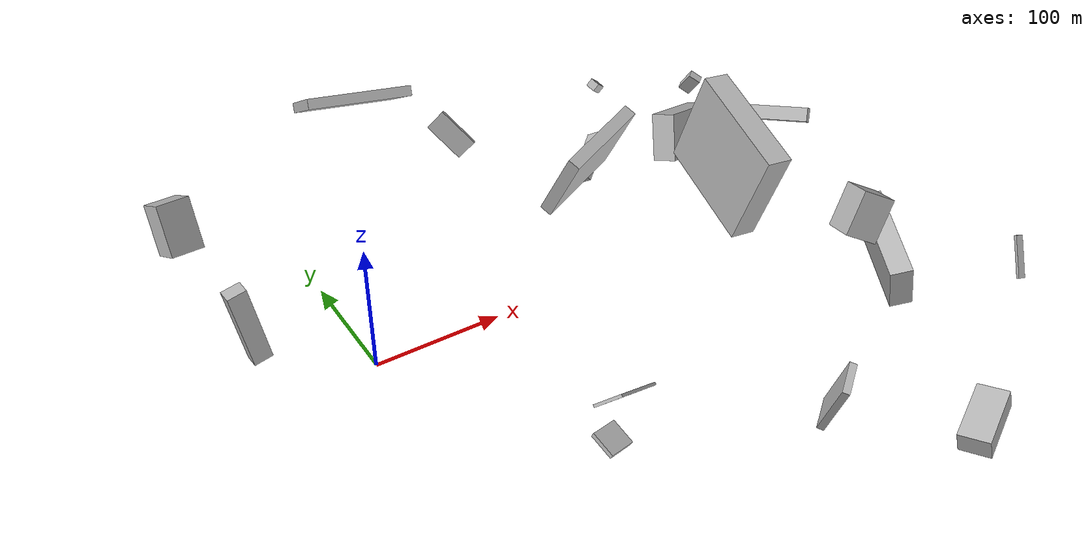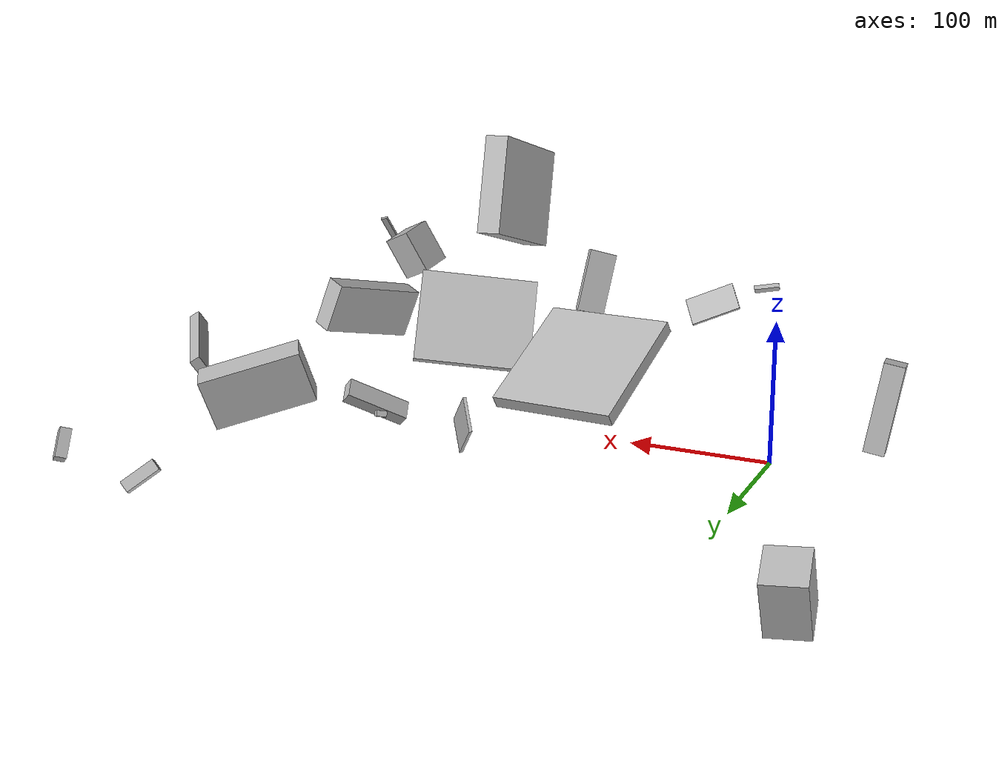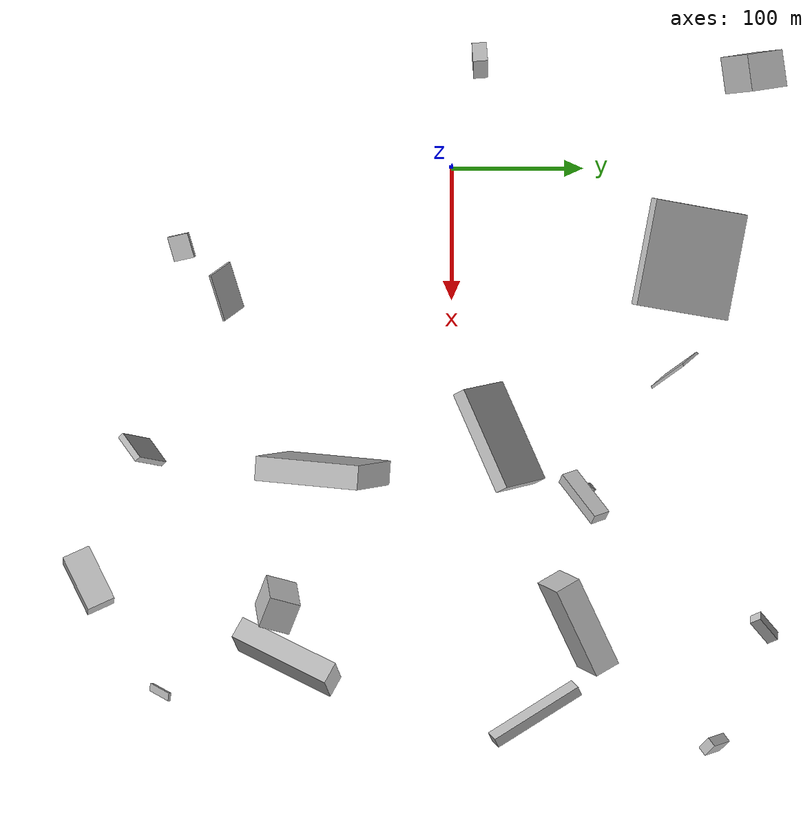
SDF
<sdf version="1.6">
 <world name="default">
  <scene>
   <sky><clouds><speed>12</speed></clouds></sky>
   <ambient>0.4 0.4 0.4 1</ambient>
   <background>0.7 0.7 0.7 1</background>
   <shadows>1</shadows>
  </scene>
  <gravity>0 0 -9.8066</gravity>
  <magnetic_field>6e-06 2.3e-05 -4.2e-05</magnetic_field>
  <physics default="0" name="default_physics" type="ode">
   <ode>
    <solver>
     <type>quick</type>
     <iters>10</iters>
     <sor>1.0</sor>
     <use_dynamic_moi_rescaling>0</use_dynamic_moi_rescaling>
    </solver>
    <constraints>
     <cfm>0</cfm>
     <erp>0.2</erp>
     <contact_max_correcting_vel>100</contact_max_correcting_vel>
     <contact_surface_layer>0.001</contact_surface_layer>
    </constraints>
   </ode>
   <max_step_size>0.004</max_step_size>
   <real_time_factor>1</real_time_factor>
   <real_time_update_rate>250</real_time_update_rate>
  </physics>
  <light name="sun" type="directional">
   <pose>0 0 10 0 0 0</pose>
   <diffuse>0.8 0.8 0.8 1</diffuse>
   <specular>0.2 0.2 0.2 1</specular>
   <attenuation>
    <range>1000</range>
    <constant>0.9</constant>
    <linear>0.01</linear>
    <quadratic>0.001</quadratic>
   </attenuation>
   <direction>-0.5 0.1 -0.9</direction>
  </light>
  <model name="building_1">
   <static>0</static>
   <pose>205.51193458305443 31.113736211321893 83.4086394063709 0.23318753947075804 -1.071206961449247 -1.3637464173691178</pose>
   <link name="link">
    <gravity>0</gravity>
    <pose>0 0 5.0 0 0 0</pose>
    <collision name="collision"><geometry><box><size>63 80 10</size></box></geometry></collision>
    <visual name="visual">
     <cast_shadows>0</cast_shadows>
     <geometry><box><size>63 80 10</size></box></geometry>
     <material>
      <script>
       <uri>model://HANNAS_wall/materials/scripts</uri>
       <uri>model://HANNAS_wall/materials/textures</uri>
       <name>vrc/HANNAS_wall</name>
      </script>
     </material>
    </visual>
   </link>
  </model>
  <model name="building_2">
   <static>0</static>
   <pose>-72.8097138840385 238.230057463352 32.45750631742803 2.7114410699752036 0.05901171862183994 0.13861246529188806</pose>
   <link name="link">
    <gravity>0</gravity>
    <pose>0 0 22.0 0 0 0</pose>
    <collision name="collision"><geometry><box><size>28 30 44</size></box></geometry></collision>
    <visual name="visual">
     <cast_shadows>0</cast_shadows>
     <geometry><box><size>28 30 44</size></box></geometry>
     <material>
      <script>
       <uri>model://HANNAS_wall/materials/scripts</uri>
       <uri>model://HANNAS_wall/materials/textures</uri>
       <name>vrc/HANNAS_wall</name>
      </script>
     </material>
    </visual>
   </link>
  </model>
  <model name="building_3">
   <static>0</static>
   <pose>433.4050591552855 201.84383246542865 17.532305766085667 2.6458547542746094 0.9393686576414674 1.8023909057959004</pose>
   <link name="link">
    <gravity>0</gravity>
    <pose>0 0 6.0 0 0 0</pose>
    <collision name="collision"><geometry><box><size>21 8 12</size></box></geometry></collision>
    <visual name="visual">
     <cast_shadows>0</cast_shadows>
     <geometry><box><size>21 8 12</size></box></geometry>
     <material>
      <script>
       <uri>model://HANNAS_wall/materials/scripts</uri>
       <uri>model://HANNAS_wall/materials/textures</uri>
       <name>vrc/HANNAS_wall</name>
      </script>
     </material>
    </visual>
   </link>
  </model>
  <model name="building_4">
   <static>0</static>
   <pose>325.7994523551418 -141.96031522768322 89.69832774721696 -1.8505331816770243 0.435329415939954 -0.3824167313314099</pose>
   <link name="link">
    <gravity>0</gravity>
    <pose>0 0 12.0 0 0 0</pose>
    <collision name="collision"><geometry><box><size>26 34 24</size></box></geometry></collision>
    <visual name="visual">
     <cast_shadows>0</cast_shadows>
     <geometry><box><size>26 34 24</size></box></geometry>
     <material>
      <script>
       <uri>model://HANNAS_wall/materials/scripts</uri>
       <uri>model://HANNAS_wall/materials/textures</uri>
       <name>vrc/HANNAS_wall</name>
      </script>
     </material>
    </visual>
   </link>
  </model>
  <model name="building_5">
   <static>0</static>
   <pose>94.18550731791068 -170.24770264945934 57.7046297931991 -0.524443430632834 -0.6937857793756104 -0.923627287219185</pose>
   <link name="link">
    <gravity>0</gravity>
    <pose>0 0 1.0 0 0 0</pose>
    <collision name="collision"><geometry><box><size>23 38 2</size></box></geometry></collision>
    <visual name="visual">
     <cast_shadows>0</cast_shadows>
     <geometry><box><size>23 38 2</size></box></geometry>
     <material>
      <script>
       <uri>model://HANNAS_wall/materials/scripts</uri>
       <uri>model://HANNAS_wall/materials/textures</uri>
       <name>vrc/HANNAS_wall</name>
      </script>
     </material>
    </visual>
   </link>
  </model>
  <model name="building_6">
   <static>0</static>
   <pose>363.79062851934555 -127.04862962128205 54.38419497286796 -2.90408458477141 0.23281244339004206 -2.023379155908653</pose>
   <link name="link">
    <gravity>0</gravity>
    <pose>0 0 19.5 0 0 0</pose>
    <collision name="collision"><geometry><box><size>80 17 39</size></box></geometry></collision>
    <visual name="visual">
     <cast_shadows>0</cast_shadows>
     <geometry><box><size>80 17 39</size></box></geometry>
     <material>
      <script>
       <uri>model://HANNAS_wall/materials/scripts</uri>
       <uri>model://HANNAS_wall/materials/textures</uri>
       <name>vrc/HANNAS_wall</name>
      </script>
     </material>
    </visual>
   </link>
  </model>
  <model name="building_7">
   <static>0</static>
   <pose>32.35403812856214 183.94131538919788 114.07204727315721 1.626449559401182 0.5084518662623116 1.4107042294615713</pose>
   <link name="link">
    <gravity>0</gravity>
    <pose>0 0 40.0 0 0 0</pose>
    <collision name="collision"><geometry><box><size>80 8 80</size></box></geometry></collision>
    <visual name="visual">
     <cast_shadows>0</cast_shadows>
     <geometry><box><size>80 8 80</size></box></geometry>
     <material>
      <script>
       <uri>model://HANNAS_wall/materials/scripts</uri>
       <uri>model://HANNAS_wall/materials/textures</uri>
       <name>vrc/HANNAS_wall</name>
      </script>
     </material>
    </visual>
   </link>
  </model>
  <model name="building_8">
   <static>0</static>
   <pose>356.6942544382416 243.11112647867046 11.720405225770667 -0.936192504273742 -0.4458213455629827 1.9806279672327032</pose>
   <link name="link">
    <gravity>0</gravity>
    <pose>0 0 12.5 0 0 0</pose>
    <collision name="collision"><geometry><box><size>9 8 25</size></box></geometry></collision>
    <visual name="visual">
     <cast_shadows>0</cast_shadows>
     <geometry><box><size>9 8 25</size></box></geometry>
     <material>
      <script>
       <uri>model://HANNAS_wall/materials/scripts</uri>
       <uri>model://HANNAS_wall/materials/textures</uri>
       <name>vrc/HANNAS_wall</name>
      </script>
     </material>
    </visual>
   </link>
  </model>
  <model name="building_9">
   <static>0</static>
   <pose>250.8679752727282 93.72366504839353 44.19573165261659 2.4565621941405054 -0.7838432469351333 2.7459872907079017</pose>
   <link name="link">
    <gravity>0</gravity>
    <pose>0 0 7.0 0 0 0</pose>
    <collision name="collision"><geometry><box><size>9 44 14</size></box></geometry></collision>
    <visual name="visual">
     <cast_shadows>0</cast_shadows>
     <geometry><box><size>9 44 14</size></box></geometry>
     <material>
      <script>
       <uri>model://HANNAS_wall/materials/scripts</uri>
       <uri>model://HANNAS_wall/materials/textures</uri>
       <name>vrc/HANNAS_wall</name>
      </script>
     </material>
    </visual>
   </link>
  </model>
  <model name="building_10">
   <static>0</static>
   <pose>243.47452759023088 102.89184127457678 35.894478215447855 -2.80840062926938 -0.20326983052016145 0.6951115026963126</pose>
   <link name="link">
    <gravity>0</gravity>
    <pose>0 0 2.0 0 0 0</pose>
    <collision name="collision"><geometry><box><size>7 6 4</size></box></geometry></collision>
    <visual name="visual">
     <cast_shadows>0</cast_shadows>
     <geometry><box><size>7 6 4</size></box></geometry>
     <material>
      <script>
       <uri>model://HANNAS_wall/materials/scripts</uri>
       <uri>model://HANNAS_wall/materials/textures</uri>
       <name>vrc/HANNAS_wall</name>
      </script>
     </material>
    </visual>
   </link>
  </model>
  <model name="building_11">
   <static>0</static>
   <pose>397.61631239708373 -211.56489731035975 89.2919191894936 2.603360170438703 0.1859582662268719 -0.1220400679179445</pose>
   <link name="link">
    <gravity>0</gravity>
    <pose>0 0 15.0 0 0 0</pose>
    <collision name="collision"><geometry><box><size>6 2 30</size></box></geometry></collision>
    <visual name="visual">
     <cast_shadows>0</cast_shadows>
     <geometry><box><size>6 2 30</size></box></geometry>
     <material>
      <script>
       <uri>model://HANNAS_wall/materials/scripts</uri>
       <uri>model://HANNAS_wall/materials/textures</uri>
       <name>vrc/HANNAS_wall</name>
      </script>
     </material>
    </visual>
   </link>
  </model>
  <model name="building_12">
   <static>0</static>
   <pose>409.1707624756478 60.582139685186135 54.312487265416074 -2.140434174562262 -0.171940903052503 -1.017673113821138</pose>
   <link name="link">
    <gravity>0</gravity>
    <pose>0 0 4.0 0 0 0</pose>
    <collision name="collision"><geometry><box><size>75 12 8</size></box></geometry></collision>
    <visual name="visual">
     <cast_shadows>0</cast_shadows>
     <geometry><box><size>75 12 8</size></box></geometry>
     <material>
      <script>
       <uri>model://HANNAS_wall/materials/scripts</uri>
       <uri>model://HANNAS_wall/materials/textures</uri>
       <name>vrc/HANNAS_wall</name>
      </script>
     </material>
    </visual>
   </link>
  </model>
  <model name="building_13">
   <static>0</static>
   <pose>218.9688846794324 -95.38173801487552 150.1039576790783 1.6423415777892336 -0.3217491709626683 1.4785781678894854</pose>
   <link name="link">
    <gravity>0</gravity>
    <pose>0 0 9.0 0 0 0</pose>
    <collision name="collision"><geometry><box><size>80 72 18</size></box></geometry></collision>
    <visual name="visual">
     <cast_shadows>0</cast_shadows>
     <geometry><box><size>80 72 18</size></box></geometry>
     <material>
      <script>
       <uri>model://HANNAS_wall/materials/scripts</uri>
       <uri>model://HANNAS_wall/materials/textures</uri>
       <name>vrc/HANNAS_wall</name>
      </script>
     </material>
    </visual>
   </link>
  </model>
  <model name="building_14">
   <static>0</static>
   <pose>349.25158898050523 86.38691816254155 40.814332407153444 2.257832415821521 1.1861830646766987 -1.9747508948980603</pose>
   <link name="link">
    <gravity>0</gravity>
    <pose>0 0 10.0 0 0 0</pose>
    <collision name="collision"><geometry><box><size>40 74 20</size></box></geometry></collision>
    <visual name="visual">
     <cast_shadows>0</cast_shadows>
     <geometry><box><size>40 74 20</size></box></geometry>
     <material>
      <script>
       <uri>model://HANNAS_wall/materials/scripts</uri>
       <uri>model://HANNAS_wall/materials/textures</uri>
       <name>vrc/HANNAS_wall</name>
      </script>
     </material>
    </visual>
   </link>
  </model>
  <model name="building_15">
   <static>0</static>
   <pose>310.28185286235544 -275.5056962379243 17.491589303370112 2.964239135545112 -0.23600421993588294 0.4650632737182711</pose>
   <link name="link">
    <gravity>0</gravity>
    <pose>0 0 8.0 0 0 0</pose>
    <collision name="collision"><geometry><box><size>45 22 16</size></box></geometry></collision>
    <visual name="visual">
     <cast_shadows>0</cast_shadows>
     <geometry><box><size>45 22 16</size></box></geometry>
     <material>
      <script>
       <uri>model://HANNAS_wall/materials/scripts</uri>
       <uri>model://HANNAS_wall/materials/textures</uri>
       <name>vrc/HANNAS_wall</name>
      </script>
     </material>
    </visual>
   </link>
  </model>
  <model name="building_16">
   <static>0</static>
   <pose>51.9823633142032 -205.5655557732872 68.37201364814126 -1.9463153068331738 -1.118633879300221 -0.9522696719278576</pose>
   <link name="link">
    <gravity>0</gravity>
    <pose>0 0 9.5 0 0 0</pose>
    <collision name="collision"><geometry><box><size>3 17 19</size></box></geometry></collision>
    <visual name="visual">
     <cast_shadows>0</cast_shadows>
     <geometry><box><size>3 17 19</size></box></geometry>
     <material>
      <script>
       <uri>model://HANNAS_wall/materials/scripts</uri>
       <uri>model://HANNAS_wall/materials/textures</uri>
       <name>vrc/HANNAS_wall</name>
      </script>
     </material>
    </visual>
   </link>
  </model>
  <model name="building_17">
   <static>0</static>
   <pose>162.14808341374075 155.56380471979367 47.043810127432025 0.03891732672987992 0.8751779514389597 2.254326345774571</pose>
   <link name="link">
    <gravity>0</gravity>
    <pose>0 0 18.5 0 0 0</pose>
    <collision name="collision"><geometry><box><size>23 2 37</size></box></geometry></collision>
    <visual name="visual">
     <cast_shadows>0</cast_shadows>
     <geometry><box><size>23 2 37</size></box></geometry>
     <material>
      <script>
       <uri>model://HANNAS_wall/materials/scripts</uri>
       <uri>model://HANNAS_wall/materials/textures</uri>
       <name>vrc/HANNAS_wall</name>
      </script>
     </material>
    </visual>
   </link>
  </model>
  <model name="building_18">
   <static>0</static>
   <pose>211.59682784306702 -231.41945037361913 47.92217613786459 -2.2480343227173436 -1.1984430475187051 -1.7969303524437548</pose>
   <link name="link">
    <gravity>0</gravity>
    <pose>0 0 2.5 0 0 0</pose>
    <collision name="collision"><geometry><box><size>51 23 5</size></box></geometry></collision>
    <visual name="visual">
     <cast_shadows>0</cast_shadows>
     <geometry><box><size>51 23 5</size></box></geometry>
     <material>
      <script>
       <uri>model://HANNAS_wall/materials/scripts</uri>
       <uri>model://HANNAS_wall/materials/textures</uri>
       <name>vrc/HANNAS_wall</name>
      </script>
     </material>
    </visual>
   </link>
  </model>
  <model name="building_19">
   <static>0</static>
   <pose>-79.64043367892513 26.565598803638853 57.7040964295379 1.5738278547958828 -0.16072557833756435 0.07398706751323787</pose>
   <link name="link">
    <gravity>0</gravity>
    <pose>0 0 5.5 0 0 0</pose>
    <collision name="collision"><geometry><box><size>14 62 11</size></box></geometry></collision>
    <visual name="visual">
     <cast_shadows>0</cast_shadows>
     <geometry><box><size>14 62 11</size></box></geometry>
     <material>
      <script>
       <uri>model://HANNAS_wall/materials/scripts</uri>
       <uri>model://HANNAS_wall/materials/textures</uri>
       <name>vrc/HANNAS_wall</name>
      </script>
     </material>
    </visual>
   </link>
  </model>
 </world>
</sdf>
